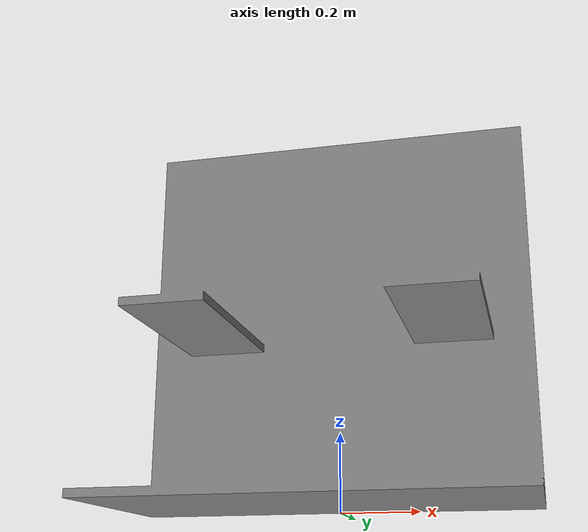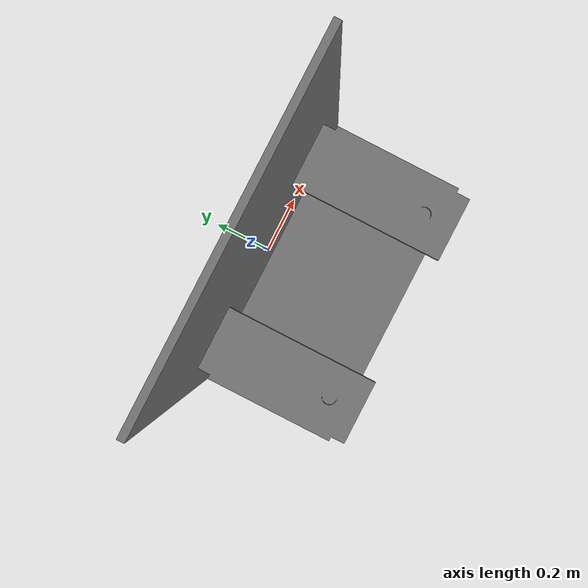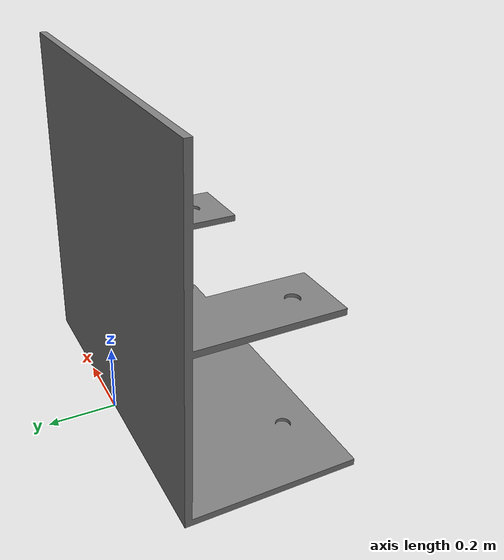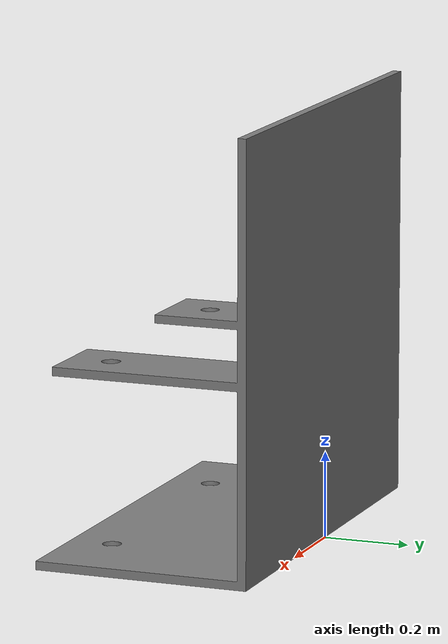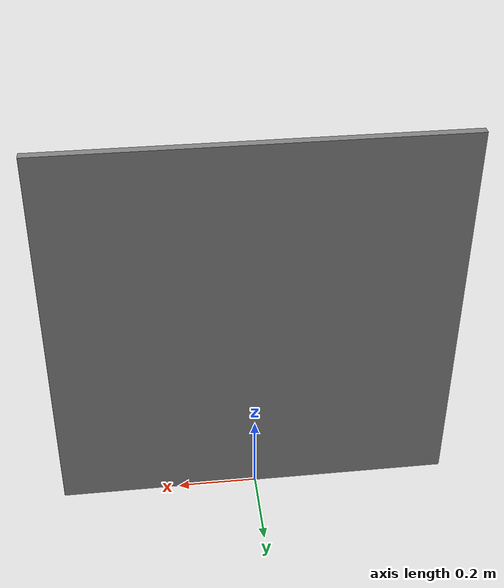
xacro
<?xml version="1.0"?>
<robot xmlns:xacro="http://www.ros.org/wiki/xacro" name="rack">
    <xacro:include filename="$(find hippo_sim)/models/common/urdf/common.xacro" />

    <gazebo>
        <static>true</static>
    </gazebo>
    <link name="base_link">
        <visual>
            <geometry>
                <mesh filename="$(find hippo_sim)/models/rack/meshes/rack_v2.stl" />
            </geometry>
            <material name="gray">
                <color rgba="0.5 0.5 0.5 1" />
            </material>
        </visual>
        <collision>
            <geometry>
                <mesh filename="$(find hippo_sim)/models/rack/meshes/rack_v2.stl" />
            </geometry>
        </collision>
        <inertial>
            <mass value="10" />
            <origin xyz="0 0 0" />
            <inertia ixx="0.1" ixy="0" ixz="0" iyy="0.1" iyz="0" izz="0.1" />
        </inertial>
    </link>

    <gazebo reference="rack">
        <visual>
            <material>
                <ambient>1 1 1 1</ambient>
                <diffuse>1 1 1 1</diffuse>
                <specular>1 1 1 1</specular>
                <pbr>
                    <metal>
                        <metalness>1</metalness>
                        <roughness>0.5</roughness>
                        <environment_map>$(find hippo_sim)/models/common/textures/env_map.dds</environment_map>
                        <albedo_map>$(find hippo_sim)/models/common/textures/blue.png</albedo_map>
                    </metal>
                </pbr>
            </material>
        </visual>
    </gazebo>

</robot>
